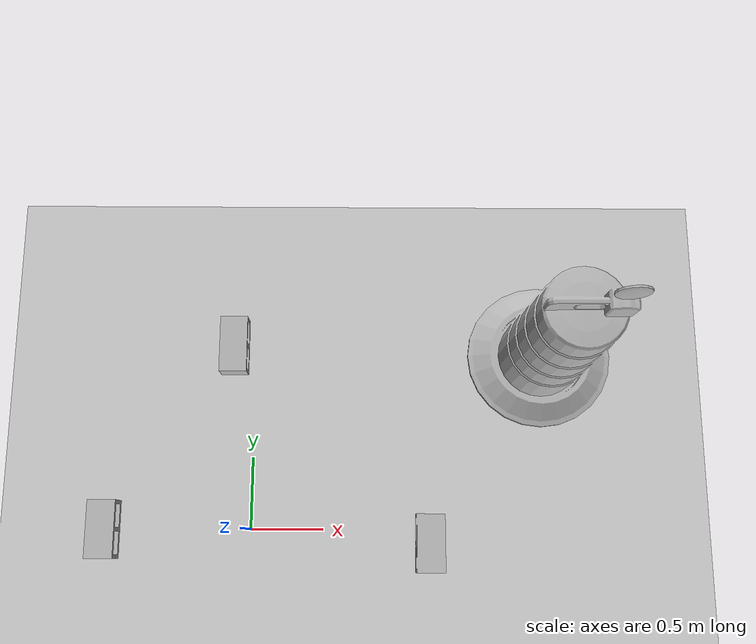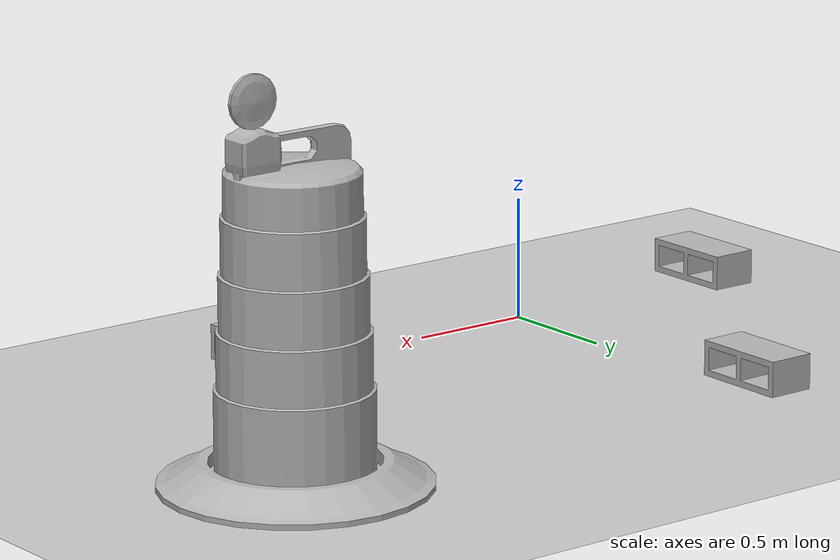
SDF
<sdf version="1.7">
 <world name="default">
  <light name="sun" type="directional">
   <pose>0 0 10 0 -0 0</pose>
   <diffuse>0.8 0.8 0.8 1</diffuse>
   <specular>0.2 0.2 0.2 1</specular>
   <attenuation>
    <range>1000</range>
    <constant>0.9</constant>
    <linear>0.01</linear>
    <quadratic>0.001</quadratic>
   </attenuation>
   <direction>-0.5 0.1 -0.9</direction>
   <spot><inner_angle>0</inner_angle><outer_angle>0</outer_angle><falloff>0</falloff></spot>
  </light>
  <model name="ground_plane">
   <static>1</static>
   <link name="link">
    <collision name="collision">
     <geometry><plane><normal>0 0 1</normal><size>100 100</size></plane></geometry>
     <surface>
      <contact><collide_bitmask>65535</collide_bitmask></contact>
      <friction><ode><mu>100</mu><mu2>50</mu2></ode></friction>
     </surface>
    </collision>
    <visual name="visual">
     <cast_shadows>0</cast_shadows>
     <geometry><plane><normal>0 0 1</normal><size>100 100</size></plane></geometry>
     <material>
      <script><uri>file://media/materials/scripts/gazebo.material</uri><name>Gazebo/Grey</name></script>
     </material>
    </visual>
   </link>
  </model>
  <gravity>0 0 -9.8</gravity>
  <magnetic_field>6e-06 2.3e-05 -4.2e-05</magnetic_field>
  <atmosphere type="adiabatic"/>
  <physics type="ode">
   <max_step_size>0.001</max_step_size>
   <real_time_factor>1</real_time_factor>
   <real_time_update_rate>1000</real_time_update_rate>
  </physics>
  <scene><ambient>0.4 0.4 0.4 1</ambient><background>0.7 0.7 0.7 1</background><shadows>1</shadows></scene>
  <spherical_coordinates>
   <surface_model>EARTH_WGS84</surface_model>
   <latitude_deg>0</latitude_deg>
   <longitude_deg>0</longitude_deg>
   <elevation>0</elevation>
   <heading_deg>0</heading_deg>
  </spherical_coordinates>
  <model name="cinder_block_2">
   <link name="link">
    <inertial>
     <pose>0 0 0.071438 0 -0 0</pose>
     <mass>5</mass>
     <inertia>
      <ixx>0.06908</ixx>
      <ixy>0</ixy>
      <iyy>0.028705</iyy>
      <ixz>0</ixz>
      <iyz>0</iyz>
      <izz>0.073708</izz>
     </inertia>
    </inertial>
    <visual name="visual">
     <geometry><mesh><uri>model://cinder_block_2/meshes/cinder_block.dae</uri></mesh></geometry>
    </visual>
    <collision name="top">
     <pose>0 0 0.130175 0 -0 0</pose>
     <geometry><box><size>0.19368 0.396875 0.0254</size></box></geometry>
     <surface>
      <contact><ode><max_vel>0.1</max_vel><min_depth>0.001</min_depth></ode></contact>
      <friction><ode><mu>1</mu><mu2>1</mu2></ode></friction>
     </surface>
    </collision>
    <collision name="bottom">
     <pose>0 0 0.0127 0 -0 0</pose>
     <geometry><box><size>0.19368 0.396875 0.0254</size></box></geometry>
     <surface>
      <contact><ode><max_vel>0.1</max_vel><min_depth>0.001</min_depth></ode></contact>
      <friction><ode><mu>1</mu><mu2>1</mu2></ode></friction>
     </surface>
    </collision>
    <collision name="left">
     <pose>0 -0.185738 0.071438 0 -0 0</pose>
     <geometry><box><size>0.19368 0.0254 0.092075</size></box></geometry>
     <surface>
      <contact><ode><max_vel>0.1</max_vel><min_depth>0.001</min_depth></ode></contact>
      <friction><ode><mu>1</mu><mu2>1</mu2></ode></friction>
     </surface>
    </collision>
    <collision name="right">
     <pose>0 0.185738 0.071438 0 -0 0</pose>
     <geometry><box><size>0.19368 0.0254 0.092075</size></box></geometry>
     <surface>
      <contact><ode><max_vel>0.1</max_vel><min_depth>0.001</min_depth></ode></contact>
      <friction><ode><mu>1</mu><mu2>1</mu2></ode></friction>
     </surface>
    </collision>
    <collision name="middle">
     <pose>0 0 0.071438 0 -0 0</pose>
     <geometry><box><size>0.19368 0.0254 0.092075</size></box></geometry>
     <surface>
      <contact><ode><max_vel>0.1</max_vel><min_depth>0.001</min_depth></ode></contact>
      <friction><ode><mu>1</mu><mu2>1</mu2></ode></friction>
     </surface>
    </collision>
   </link>
   <pose>1.23889 -0.089639 -1e-05 0 -0 0</pose>
  </model>
  <model name="cinder_block_2_0">
   <link name="link">
    <inertial>
     <pose>0 0 0.071438 0 -0 0</pose>
     <mass>5</mass>
     <inertia>
      <ixx>0.06908</ixx>
      <ixy>0</ixy>
      <iyy>0.028705</iyy>
      <ixz>0</ixz>
      <iyz>0</iyz>
      <izz>0.073708</izz>
     </inertia>
    </inertial>
    <visual name="visual">
     <geometry><mesh><uri>model://cinder_block_2/meshes/cinder_block.dae</uri></mesh></geometry>
    </visual>
    <collision name="top">
     <pose>0 0 0.130175 0 -0 0</pose>
     <geometry><box><size>0.19368 0.396875 0.0254</size></box></geometry>
     <surface>
      <contact><ode><max_vel>0.1</max_vel><min_depth>0.001</min_depth></ode></contact>
      <friction><ode><mu>1</mu><mu2>1</mu2></ode></friction>
     </surface>
    </collision>
    <collision name="bottom">
     <pose>0 0 0.0127 0 -0 0</pose>
     <geometry><box><size>0.19368 0.396875 0.0254</size></box></geometry>
     <surface>
      <contact><ode><max_vel>0.1</max_vel><min_depth>0.001</min_depth></ode></contact>
      <friction><ode><mu>1</mu><mu2>1</mu2></ode></friction>
     </surface>
    </collision>
    <collision name="left">
     <pose>0 -0.185738 0.071438 0 -0 0</pose>
     <geometry><box><size>0.19368 0.0254 0.092075</size></box></geometry>
     <surface>
      <contact><ode><max_vel>0.1</max_vel><min_depth>0.001</min_depth></ode></contact>
      <friction><ode><mu>1</mu><mu2>1</mu2></ode></friction>
     </surface>
    </collision>
    <collision name="right">
     <pose>0 0.185738 0.071438 0 -0 0</pose>
     <geometry><box><size>0.19368 0.0254 0.092075</size></box></geometry>
     <surface>
      <contact><ode><max_vel>0.1</max_vel><min_depth>0.001</min_depth></ode></contact>
      <friction><ode><mu>1</mu><mu2>1</mu2></ode></friction>
     </surface>
    </collision>
    <collision name="middle">
     <pose>0 0 0.071438 0 -0 0</pose>
     <geometry><box><size>0.19368 0.0254 0.092075</size></box></geometry>
     <surface>
      <contact><ode><max_vel>0.1</max_vel><min_depth>0.001</min_depth></ode></contact>
      <friction><ode><mu>1</mu><mu2>1</mu2></ode></friction>
     </surface>
    </collision>
   </link>
   <pose>-0.144718 1.29623 -1e-05 0 -0 0</pose>
  </model>
  <model name="cinder_block_2_1">
   <link name="link">
    <inertial>
     <pose>0 0 0.071438 0 -0 0</pose>
     <mass>5</mass>
     <inertia>
      <ixx>0.06908</ixx>
      <ixy>0</ixy>
      <iyy>0.028705</iyy>
      <ixz>0</ixz>
      <iyz>0</iyz>
      <izz>0.073708</izz>
     </inertia>
    </inertial>
    <visual name="visual">
     <geometry><mesh><uri>model://cinder_block_2/meshes/cinder_block.dae</uri></mesh></geometry>
    </visual>
    <collision name="top">
     <pose>0 0 0.130175 0 -0 0</pose>
     <geometry><box><size>0.19368 0.396875 0.0254</size></box></geometry>
     <surface>
      <contact><ode><max_vel>0.1</max_vel><min_depth>0.001</min_depth></ode></contact>
      <friction><ode><mu>1</mu><mu2>1</mu2></ode></friction>
     </surface>
    </collision>
    <collision name="bottom">
     <pose>0 0 0.0127 0 -0 0</pose>
     <geometry><box><size>0.19368 0.396875 0.0254</size></box></geometry>
     <surface>
      <contact><ode><max_vel>0.1</max_vel><min_depth>0.001</min_depth></ode></contact>
      <friction><ode><mu>1</mu><mu2>1</mu2></ode></friction>
     </surface>
    </collision>
    <collision name="left">
     <pose>0 -0.185738 0.071438 0 -0 0</pose>
     <geometry><box><size>0.19368 0.0254 0.092075</size></box></geometry>
     <surface>
      <contact><ode><max_vel>0.1</max_vel><min_depth>0.001</min_depth></ode></contact>
      <friction><ode><mu>1</mu><mu2>1</mu2></ode></friction>
     </surface>
    </collision>
    <collision name="right">
     <pose>0 0.185738 0.071438 0 -0 0</pose>
     <geometry><box><size>0.19368 0.0254 0.092075</size></box></geometry>
     <surface>
      <contact><ode><max_vel>0.1</max_vel><min_depth>0.001</min_depth></ode></contact>
      <friction><ode><mu>1</mu><mu2>1</mu2></ode></friction>
     </surface>
    </collision>
    <collision name="middle">
     <pose>0 0 0.071438 0 -0 0</pose>
     <geometry><box><size>0.19368 0.0254 0.092075</size></box></geometry>
     <surface>
      <contact><ode><max_vel>0.1</max_vel><min_depth>0.001</min_depth></ode></contact>
      <friction><ode><mu>1</mu><mu2>1</mu2></ode></friction>
     </surface>
    </collision>
   </link>
   <pose>-1.00955 -0.00441 -1e-05 0 -0 0</pose>
  </model>
  <model name="Construction Barrel">
   <link name="link">
    <inertial>
     <pose>0 0 0.4 0 -0 0</pose>
     <mass>500</mass>
     <inertia><ixx>51.2096</ixx><iyy>51.2096</iyy><izz>25</izz><ixy>0</ixy><ixz>0</ixz><iyz>0</iyz></inertia>
    </inertial>
    <collision name="collision">
     <geometry><mesh><uri>model://construction_barrel/meshes/construction_barrel.dae</uri></mesh></geometry>
    </collision>
    <visual name="visual">
     <geometry><mesh><uri>model://construction_barrel/meshes/construction_barrel.dae</uri></mesh></geometry>
    </visual>
   </link>
   <pose>2.03984 1.23852 0 0 0 -4e-06</pose>
  </model>
 </world>
</sdf>
